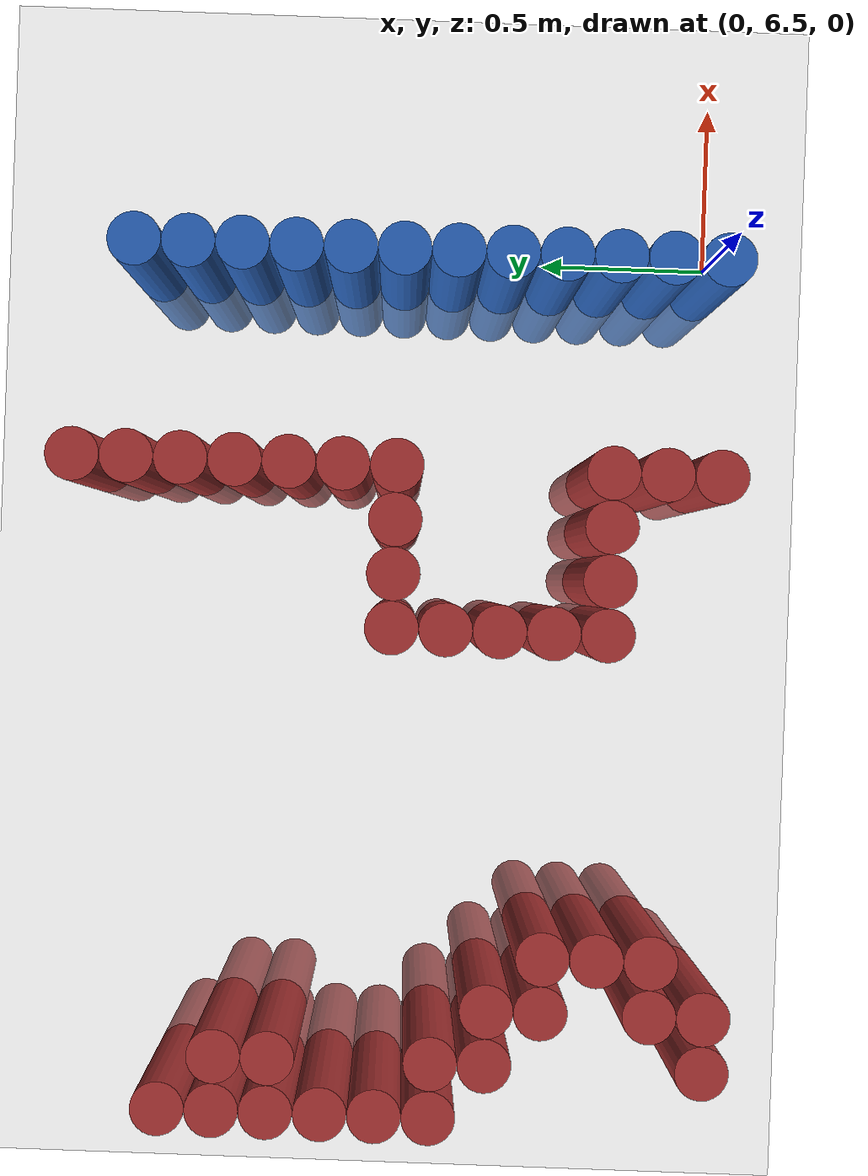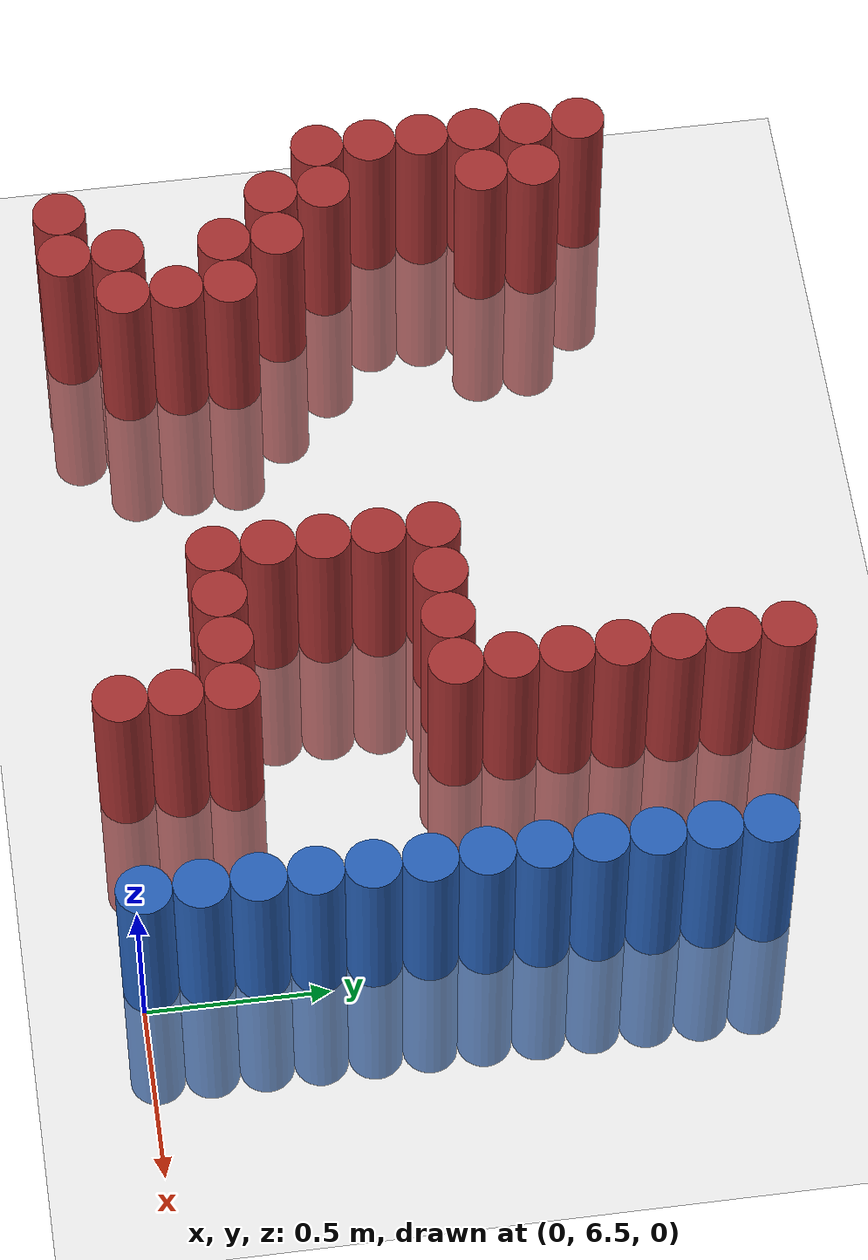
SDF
<sdf version="1.6">
 <world name="default">
  <model name="ground_plane">
   <static>1</static>
   <link name="link">
    <collision name="collision">
     <geometry><plane><normal>0 0 1</normal><size>100 100</size></plane></geometry>
     <surface><friction><ode><mu>100</mu><mu2>50</mu2></ode></friction></surface>
    </collision>
    <visual name="visual">
     <cast_shadows>0</cast_shadows>
     <geometry><plane><normal>0 0 1</normal><size>100 100</size></plane></geometry>
     <material>
      <script><uri>file://media/materials/scripts/gazebo.material</uri><name>Gazebo/Grey</name></script>
     </material>
    </visual>
   </link>
  </model>
  <model name="unit_cylinder_172">
   <static>1</static>
   <pose>-2.475000 7.275000 0.000000 0.000000 0.000000 0.000000</pose>
   <link name="link">
    <inertial>
     <mass>1</mass>
     <inertia><ixx>0.145833</ixx><ixy>0</ixy><ixz>0</ixz><iyy>0.145833</iyy><iyz>0</iyz><izz>0.125</izz></inertia>
    </inertial>
    <collision name="collision">
     <geometry><cylinder><radius>0.075000</radius><length>1</length></cylinder></geometry>
    </collision>
    <visual name="visual">
     <geometry><cylinder><radius>0.075000</radius><length>1</length></cylinder></geometry>
     <material>
      <ambient>0.648000 0.192000 0.192000 1</ambient>
      <diffuse>0.648000 0.192000 0.192000 1</diffuse>
     </material>
     <material>
      <script><name>Gazebo/Grey</name><uri>file://media/materials/scripts/gazebo.material</uri></script>
     </material>
    </visual>
   </link>
  </model>
  <model name="unit_cylinder_173">
   <static>1</static>
   <pose>-2.475000 7.425000 0.000000 0.000000 0.000000 0.000000</pose>
   <link name="link">
    <inertial>
     <mass>1</mass>
     <inertia><ixx>0.145833</ixx><ixy>0</ixy><ixz>0</ixz><iyy>0.145833</iyy><iyz>0</iyz><izz>0.125</izz></inertia>
    </inertial>
    <collision name="collision">
     <geometry><cylinder><radius>0.075000</radius><length>1</length></cylinder></geometry>
    </collision>
    <visual name="visual">
     <geometry><cylinder><radius>0.075000</radius><length>1</length></cylinder></geometry>
     <material>
      <ambient>0.648000 0.192000 0.192000 1</ambient>
      <diffuse>0.648000 0.192000 0.192000 1</diffuse>
     </material>
     <material>
      <script><name>Gazebo/Grey</name><uri>file://media/materials/scripts/gazebo.material</uri></script>
     </material>
    </visual>
   </link>
  </model>
  <model name="unit_cylinder_174">
   <static>1</static>
   <pose>-2.475000 7.575000 0.000000 0.000000 0.000000 0.000000</pose>
   <link name="link">
    <inertial>
     <mass>1</mass>
     <inertia><ixx>0.145833</ixx><ixy>0</ixy><ixz>0</ixz><iyy>0.145833</iyy><iyz>0</iyz><izz>0.125</izz></inertia>
    </inertial>
    <collision name="collision">
     <geometry><cylinder><radius>0.075000</radius><length>1</length></cylinder></geometry>
    </collision>
    <visual name="visual">
     <geometry><cylinder><radius>0.075000</radius><length>1</length></cylinder></geometry>
     <material>
      <ambient>0.648000 0.192000 0.192000 1</ambient>
      <diffuse>0.648000 0.192000 0.192000 1</diffuse>
     </material>
     <material>
      <script><name>Gazebo/Grey</name><uri>file://media/materials/scripts/gazebo.material</uri></script>
     </material>
    </visual>
   </link>
  </model>
  <model name="unit_cylinder_175">
   <static>1</static>
   <pose>-2.475000 7.725000 0.000000 0.000000 0.000000 0.000000</pose>
   <link name="link">
    <inertial>
     <mass>1</mass>
     <inertia><ixx>0.145833</ixx><ixy>0</ixy><ixz>0</ixz><iyy>0.145833</iyy><iyz>0</iyz><izz>0.125</izz></inertia>
    </inertial>
    <collision name="collision">
     <geometry><cylinder><radius>0.075000</radius><length>1</length></cylinder></geometry>
    </collision>
    <visual name="visual">
     <geometry><cylinder><radius>0.075000</radius><length>1</length></cylinder></geometry>
     <material>
      <ambient>0.648000 0.192000 0.192000 1</ambient>
      <diffuse>0.648000 0.192000 0.192000 1</diffuse>
     </material>
     <material>
      <script><name>Gazebo/Grey</name><uri>file://media/materials/scripts/gazebo.material</uri></script>
     </material>
    </visual>
   </link>
  </model>
  <model name="unit_cylinder_176">
   <static>1</static>
   <pose>-2.475000 7.875000 0.000000 0.000000 0.000000 0.000000</pose>
   <link name="link">
    <inertial>
     <mass>1</mass>
     <inertia><ixx>0.145833</ixx><ixy>0</ixy><ixz>0</ixz><iyy>0.145833</iyy><iyz>0</iyz><izz>0.125</izz></inertia>
    </inertial>
    <collision name="collision">
     <geometry><cylinder><radius>0.075000</radius><length>1</length></cylinder></geometry>
    </collision>
    <visual name="visual">
     <geometry><cylinder><radius>0.075000</radius><length>1</length></cylinder></geometry>
     <material>
      <ambient>0.648000 0.192000 0.192000 1</ambient>
      <diffuse>0.648000 0.192000 0.192000 1</diffuse>
     </material>
     <material>
      <script><name>Gazebo/Grey</name><uri>file://media/materials/scripts/gazebo.material</uri></script>
     </material>
    </visual>
   </link>
  </model>
  <model name="unit_cylinder_177">
   <static>1</static>
   <pose>-2.475000 8.025000 0.000000 0.000000 0.000000 0.000000</pose>
   <link name="link">
    <inertial>
     <mass>1</mass>
     <inertia><ixx>0.145833</ixx><ixy>0</ixy><ixz>0</ixz><iyy>0.145833</iyy><iyz>0</iyz><izz>0.125</izz></inertia>
    </inertial>
    <collision name="collision">
     <geometry><cylinder><radius>0.075000</radius><length>1</length></cylinder></geometry>
    </collision>
    <visual name="visual">
     <geometry><cylinder><radius>0.075000</radius><length>1</length></cylinder></geometry>
     <material>
      <ambient>0.648000 0.192000 0.192000 1</ambient>
      <diffuse>0.648000 0.192000 0.192000 1</diffuse>
     </material>
     <material>
      <script><name>Gazebo/Grey</name><uri>file://media/materials/scripts/gazebo.material</uri></script>
     </material>
    </visual>
   </link>
  </model>
  <model name="unit_cylinder_179">
   <static>1</static>
   <pose>-2.325000 6.525000 0.000000 0.000000 0.000000 0.000000</pose>
   <link name="link">
    <inertial>
     <mass>1</mass>
     <inertia><ixx>0.145833</ixx><ixy>0</ixy><ixz>0</ixz><iyy>0.145833</iyy><iyz>0</iyz><izz>0.125</izz></inertia>
    </inertial>
    <collision name="collision">
     <geometry><cylinder><radius>0.075000</radius><length>1</length></cylinder></geometry>
    </collision>
    <visual name="visual">
     <geometry><cylinder><radius>0.075000</radius><length>1</length></cylinder></geometry>
     <material>
      <ambient>0.648000 0.192000 0.192000 1</ambient>
      <diffuse>0.648000 0.192000 0.192000 1</diffuse>
     </material>
     <material>
      <script><name>Gazebo/Grey</name><uri>file://media/materials/scripts/gazebo.material</uri></script>
     </material>
    </visual>
   </link>
  </model>
  <model name="unit_cylinder_180">
   <static>1</static>
   <pose>-2.325000 7.125000 0.000000 0.000000 0.000000 0.000000</pose>
   <link name="link">
    <inertial>
     <mass>1</mass>
     <inertia><ixx>0.145833</ixx><ixy>0</ixy><ixz>0</ixz><iyy>0.145833</iyy><iyz>0</iyz><izz>0.125</izz></inertia>
    </inertial>
    <collision name="collision">
     <geometry><cylinder><radius>0.075000</radius><length>1</length></cylinder></geometry>
    </collision>
    <visual name="visual">
     <geometry><cylinder><radius>0.075000</radius><length>1</length></cylinder></geometry>
     <material>
      <ambient>0.648000 0.192000 0.192000 1</ambient>
      <diffuse>0.648000 0.192000 0.192000 1</diffuse>
     </material>
     <material>
      <script><name>Gazebo/Grey</name><uri>file://media/materials/scripts/gazebo.material</uri></script>
     </material>
    </visual>
   </link>
  </model>
  <model name="unit_cylinder_181">
   <static>1</static>
   <pose>-2.325000 7.275000 0.000000 0.000000 0.000000 0.000000</pose>
   <link name="link">
    <inertial>
     <mass>1</mass>
     <inertia><ixx>0.145833</ixx><ixy>0</ixy><ixz>0</ixz><iyy>0.145833</iyy><iyz>0</iyz><izz>0.125</izz></inertia>
    </inertial>
    <collision name="collision">
     <geometry><cylinder><radius>0.075000</radius><length>1</length></cylinder></geometry>
    </collision>
    <visual name="visual">
     <geometry><cylinder><radius>0.075000</radius><length>1</length></cylinder></geometry>
     <material>
      <ambient>0.648000 0.192000 0.192000 1</ambient>
      <diffuse>0.648000 0.192000 0.192000 1</diffuse>
     </material>
     <material>
      <script><name>Gazebo/Grey</name><uri>file://media/materials/scripts/gazebo.material</uri></script>
     </material>
    </visual>
   </link>
  </model>
  <model name="unit_cylinder_182">
   <static>1</static>
   <pose>-2.325000 7.725000 0.000000 0.000000 0.000000 0.000000</pose>
   <link name="link">
    <inertial>
     <mass>1</mass>
     <inertia><ixx>0.145833</ixx><ixy>0</ixy><ixz>0</ixz><iyy>0.145833</iyy><iyz>0</iyz><izz>0.125</izz></inertia>
    </inertial>
    <collision name="collision">
     <geometry><cylinder><radius>0.075000</radius><length>1</length></cylinder></geometry>
    </collision>
    <visual name="visual">
     <geometry><cylinder><radius>0.075000</radius><length>1</length></cylinder></geometry>
     <material>
      <ambient>0.648000 0.192000 0.192000 1</ambient>
      <diffuse>0.648000 0.192000 0.192000 1</diffuse>
     </material>
     <material>
      <script><name>Gazebo/Grey</name><uri>file://media/materials/scripts/gazebo.material</uri></script>
     </material>
    </visual>
   </link>
  </model>
  <model name="unit_cylinder_183">
   <static>1</static>
   <pose>-2.325000 7.875000 0.000000 0.000000 0.000000 0.000000</pose>
   <link name="link">
    <inertial>
     <mass>1</mass>
     <inertia><ixx>0.145833</ixx><ixy>0</ixy><ixz>0</ixz><iyy>0.145833</iyy><iyz>0</iyz><izz>0.125</izz></inertia>
    </inertial>
    <collision name="collision">
     <geometry><cylinder><radius>0.075000</radius><length>1</length></cylinder></geometry>
    </collision>
    <visual name="visual">
     <geometry><cylinder><radius>0.075000</radius><length>1</length></cylinder></geometry>
     <material>
      <ambient>0.648000 0.192000 0.192000 1</ambient>
      <diffuse>0.648000 0.192000 0.192000 1</diffuse>
     </material>
     <material>
      <script><name>Gazebo/Grey</name><uri>file://media/materials/scripts/gazebo.material</uri></script>
     </material>
    </visual>
   </link>
  </model>
  <model name="unit_cylinder_185">
   <static>1</static>
   <pose>-2.175000 6.525000 0.000000 0.000000 0.000000 0.000000</pose>
   <link name="link">
    <inertial>
     <mass>1</mass>
     <inertia><ixx>0.145833</ixx><ixy>0</ixy><ixz>0</ixz><iyy>0.145833</iyy><iyz>0</iyz><izz>0.125</izz></inertia>
    </inertial>
    <collision name="collision">
     <geometry><cylinder><radius>0.075000</radius><length>1</length></cylinder></geometry>
    </collision>
    <visual name="visual">
     <geometry><cylinder><radius>0.075000</radius><length>1</length></cylinder></geometry>
     <material>
      <ambient>0.648000 0.192000 0.192000 1</ambient>
      <diffuse>0.648000 0.192000 0.192000 1</diffuse>
     </material>
     <material>
      <script><name>Gazebo/Grey</name><uri>file://media/materials/scripts/gazebo.material</uri></script>
     </material>
    </visual>
   </link>
  </model>
  <model name="unit_cylinder_186">
   <static>1</static>
   <pose>-2.175000 6.675000 0.000000 0.000000 0.000000 0.000000</pose>
   <link name="link">
    <inertial>
     <mass>1</mass>
     <inertia><ixx>0.145833</ixx><ixy>0</ixy><ixz>0</ixz><iyy>0.145833</iyy><iyz>0</iyz><izz>0.125</izz></inertia>
    </inertial>
    <collision name="collision">
     <geometry><cylinder><radius>0.075000</radius><length>1</length></cylinder></geometry>
    </collision>
    <visual name="visual">
     <geometry><cylinder><radius>0.075000</radius><length>1</length></cylinder></geometry>
     <material>
      <ambient>0.648000 0.192000 0.192000 1</ambient>
      <diffuse>0.648000 0.192000 0.192000 1</diffuse>
     </material>
     <material>
      <script><name>Gazebo/Grey</name><uri>file://media/materials/scripts/gazebo.material</uri></script>
     </material>
    </visual>
   </link>
  </model>
  <model name="unit_cylinder_187">
   <static>1</static>
   <pose>-2.175000 6.975000 0.000000 0.000000 0.000000 0.000000</pose>
   <link name="link">
    <inertial>
     <mass>1</mass>
     <inertia><ixx>0.145833</ixx><ixy>0</ixy><ixz>0</ixz><iyy>0.145833</iyy><iyz>0</iyz><izz>0.125</izz></inertia>
    </inertial>
    <collision name="collision">
     <geometry><cylinder><radius>0.075000</radius><length>1</length></cylinder></geometry>
    </collision>
    <visual name="visual">
     <geometry><cylinder><radius>0.075000</radius><length>1</length></cylinder></geometry>
     <material>
      <ambient>0.648000 0.192000 0.192000 1</ambient>
      <diffuse>0.648000 0.192000 0.192000 1</diffuse>
     </material>
     <material>
      <script><name>Gazebo/Grey</name><uri>file://media/materials/scripts/gazebo.material</uri></script>
     </material>
    </visual>
   </link>
  </model>
  <model name="unit_cylinder_188">
   <static>1</static>
   <pose>-2.175000 7.125000 0.000000 0.000000 0.000000 0.000000</pose>
   <link name="link">
    <inertial>
     <mass>1</mass>
     <inertia><ixx>0.145833</ixx><ixy>0</ixy><ixz>0</ixz><iyy>0.145833</iyy><iyz>0</iyz><izz>0.125</izz></inertia>
    </inertial>
    <collision name="collision">
     <geometry><cylinder><radius>0.075000</radius><length>1</length></cylinder></geometry>
    </collision>
    <visual name="visual">
     <geometry><cylinder><radius>0.075000</radius><length>1</length></cylinder></geometry>
     <material>
      <ambient>0.648000 0.192000 0.192000 1</ambient>
      <diffuse>0.648000 0.192000 0.192000 1</diffuse>
     </material>
     <material>
      <script><name>Gazebo/Grey</name><uri>file://media/materials/scripts/gazebo.material</uri></script>
     </material>
    </visual>
   </link>
  </model>
  <model name="unit_cylinder_190">
   <static>1</static>
   <pose>-2.025000 6.675000 0.000000 0.000000 0.000000 0.000000</pose>
   <link name="link">
    <inertial>
     <mass>1</mass>
     <inertia><ixx>0.145833</ixx><ixy>0</ixy><ixz>0</ixz><iyy>0.145833</iyy><iyz>0</iyz><izz>0.125</izz></inertia>
    </inertial>
    <collision name="collision">
     <geometry><cylinder><radius>0.075000</radius><length>1</length></cylinder></geometry>
    </collision>
    <visual name="visual">
     <geometry><cylinder><radius>0.075000</radius><length>1</length></cylinder></geometry>
     <material>
      <ambient>0.648000 0.192000 0.192000 1</ambient>
      <diffuse>0.648000 0.192000 0.192000 1</diffuse>
     </material>
     <material>
      <script><name>Gazebo/Grey</name><uri>file://media/materials/scripts/gazebo.material</uri></script>
     </material>
    </visual>
   </link>
  </model>
  <model name="unit_cylinder_191">
   <static>1</static>
   <pose>-2.025000 6.825000 0.000000 0.000000 0.000000 0.000000</pose>
   <link name="link">
    <inertial>
     <mass>1</mass>
     <inertia><ixx>0.145833</ixx><ixy>0</ixy><ixz>0</ixz><iyy>0.145833</iyy><iyz>0</iyz><izz>0.125</izz></inertia>
    </inertial>
    <collision name="collision">
     <geometry><cylinder><radius>0.075000</radius><length>1</length></cylinder></geometry>
    </collision>
    <visual name="visual">
     <geometry><cylinder><radius>0.075000</radius><length>1</length></cylinder></geometry>
     <material>
      <ambient>0.648000 0.192000 0.192000 1</ambient>
      <diffuse>0.648000 0.192000 0.192000 1</diffuse>
     </material>
     <material>
      <script><name>Gazebo/Grey</name><uri>file://media/materials/scripts/gazebo.material</uri></script>
     </material>
    </visual>
   </link>
  </model>
  <model name="unit_cylinder_192">
   <static>1</static>
   <pose>-2.025000 6.975000 0.000000 0.000000 0.000000 0.000000</pose>
   <link name="link">
    <inertial>
     <mass>1</mass>
     <inertia><ixx>0.145833</ixx><ixy>0</ixy><ixz>0</ixz><iyy>0.145833</iyy><iyz>0</iyz><izz>0.125</izz></inertia>
    </inertial>
    <collision name="collision">
     <geometry><cylinder><radius>0.075000</radius><length>1</length></cylinder></geometry>
    </collision>
    <visual name="visual">
     <geometry><cylinder><radius>0.075000</radius><length>1</length></cylinder></geometry>
     <material>
      <ambient>0.648000 0.192000 0.192000 1</ambient>
      <diffuse>0.648000 0.192000 0.192000 1</diffuse>
     </material>
     <material>
      <script><name>Gazebo/Grey</name><uri>file://media/materials/scripts/gazebo.material</uri></script>
     </material>
    </visual>
   </link>
  </model>
  <model name="unit_cylinder_208">
   <static>1</static>
   <pose>-1.125000 6.825000 0.000000 0.000000 0.000000 0.000000</pose>
   <link name="link">
    <inertial>
     <mass>1</mass>
     <inertia><ixx>0.145833</ixx><ixy>0</ixy><ixz>0</ixz><iyy>0.145833</iyy><iyz>0</iyz><izz>0.125</izz></inertia>
    </inertial>
    <collision name="collision">
     <geometry><cylinder><radius>0.075000</radius><length>1</length></cylinder></geometry>
    </collision>
    <visual name="visual">
     <geometry><cylinder><radius>0.075000</radius><length>1</length></cylinder></geometry>
     <material>
      <ambient>0.648000 0.192000 0.192000 1</ambient>
      <diffuse>0.648000 0.192000 0.192000 1</diffuse>
     </material>
     <material>
      <script><name>Gazebo/Grey</name><uri>file://media/materials/scripts/gazebo.material</uri></script>
     </material>
    </visual>
   </link>
  </model>
  <model name="unit_cylinder_209">
   <static>1</static>
   <pose>-1.125000 6.975000 0.000000 0.000000 0.000000 0.000000</pose>
   <link name="link">
    <inertial>
     <mass>1</mass>
     <inertia><ixx>0.145833</ixx><ixy>0</ixy><ixz>0</ixz><iyy>0.145833</iyy><iyz>0</iyz><izz>0.125</izz></inertia>
    </inertial>
    <collision name="collision">
     <geometry><cylinder><radius>0.075000</radius><length>1</length></cylinder></geometry>
    </collision>
    <visual name="visual">
     <geometry><cylinder><radius>0.075000</radius><length>1</length></cylinder></geometry>
     <material>
      <ambient>0.648000 0.192000 0.192000 1</ambient>
      <diffuse>0.648000 0.192000 0.192000 1</diffuse>
     </material>
     <material>
      <script><name>Gazebo/Grey</name><uri>file://media/materials/scripts/gazebo.material</uri></script>
     </material>
    </visual>
   </link>
  </model>
  <model name="unit_cylinder_210">
   <static>1</static>
   <pose>-1.125000 7.125000 0.000000 0.000000 0.000000 0.000000</pose>
   <link name="link">
    <inertial>
     <mass>1</mass>
     <inertia><ixx>0.145833</ixx><ixy>0</ixy><ixz>0</ixz><iyy>0.145833</iyy><iyz>0</iyz><izz>0.125</izz></inertia>
    </inertial>
    <collision name="collision">
     <geometry><cylinder><radius>0.075000</radius><length>1</length></cylinder></geometry>
    </collision>
    <visual name="visual">
     <geometry><cylinder><radius>0.075000</radius><length>1</length></cylinder></geometry>
     <material>
      <ambient>0.648000 0.192000 0.192000 1</ambient>
      <diffuse>0.648000 0.192000 0.192000 1</diffuse>
     </material>
     <material>
      <script><name>Gazebo/Grey</name><uri>file://media/materials/scripts/gazebo.material</uri></script>
     </material>
    </visual>
   </link>
  </model>
  <model name="unit_cylinder_211">
   <static>1</static>
   <pose>-1.125000 7.275000 0.000000 0.000000 0.000000 0.000000</pose>
   <link name="link">
    <inertial>
     <mass>1</mass>
     <inertia><ixx>0.145833</ixx><ixy>0</ixy><ixz>0</ixz><iyy>0.145833</iyy><iyz>0</iyz><izz>0.125</izz></inertia>
    </inertial>
    <collision name="collision">
     <geometry><cylinder><radius>0.075000</radius><length>1</length></cylinder></geometry>
    </collision>
    <visual name="visual">
     <geometry><cylinder><radius>0.075000</radius><length>1</length></cylinder></geometry>
     <material>
      <ambient>0.648000 0.192000 0.192000 1</ambient>
      <diffuse>0.648000 0.192000 0.192000 1</diffuse>
     </material>
     <material>
      <script><name>Gazebo/Grey</name><uri>file://media/materials/scripts/gazebo.material</uri></script>
     </material>
    </visual>
   </link>
  </model>
  <model name="unit_cylinder_212">
   <static>1</static>
   <pose>-1.125000 7.425000 0.000000 0.000000 0.000000 0.000000</pose>
   <link name="link">
    <inertial>
     <mass>1</mass>
     <inertia><ixx>0.145833</ixx><ixy>0</ixy><ixz>0</ixz><iyy>0.145833</iyy><iyz>0</iyz><izz>0.125</izz></inertia>
    </inertial>
    <collision name="collision">
     <geometry><cylinder><radius>0.075000</radius><length>1</length></cylinder></geometry>
    </collision>
    <visual name="visual">
     <geometry><cylinder><radius>0.075000</radius><length>1</length></cylinder></geometry>
     <material>
      <ambient>0.648000 0.192000 0.192000 1</ambient>
      <diffuse>0.648000 0.192000 0.192000 1</diffuse>
     </material>
     <material>
      <script><name>Gazebo/Grey</name><uri>file://media/materials/scripts/gazebo.material</uri></script>
     </material>
    </visual>
   </link>
  </model>
  <model name="unit_cylinder_215">
   <static>1</static>
   <pose>-0.975000 6.825000 0.000000 0.000000 0.000000 0.000000</pose>
   <link name="link">
    <inertial>
     <mass>1</mass>
     <inertia><ixx>0.145833</ixx><ixy>0</ixy><ixz>0</ixz><iyy>0.145833</iyy><iyz>0</iyz><izz>0.125</izz></inertia>
    </inertial>
    <collision name="collision">
     <geometry><cylinder><radius>0.075000</radius><length>1</length></cylinder></geometry>
    </collision>
    <visual name="visual">
     <geometry><cylinder><radius>0.075000</radius><length>1</length></cylinder></geometry>
     <material>
      <ambient>0.648000 0.192000 0.192000 1</ambient>
      <diffuse>0.648000 0.192000 0.192000 1</diffuse>
     </material>
     <material>
      <script><name>Gazebo/Grey</name><uri>file://media/materials/scripts/gazebo.material</uri></script>
     </material>
    </visual>
   </link>
  </model>
  <model name="unit_cylinder_216">
   <static>1</static>
   <pose>-0.975000 7.425000 0.000000 0.000000 0.000000 0.000000</pose>
   <link name="link">
    <inertial>
     <mass>1</mass>
     <inertia><ixx>0.145833</ixx><ixy>0</ixy><ixz>0</ixz><iyy>0.145833</iyy><iyz>0</iyz><izz>0.125</izz></inertia>
    </inertial>
    <collision name="collision">
     <geometry><cylinder><radius>0.075000</radius><length>1</length></cylinder></geometry>
    </collision>
    <visual name="visual">
     <geometry><cylinder><radius>0.075000</radius><length>1</length></cylinder></geometry>
     <material>
      <ambient>0.648000 0.192000 0.192000 1</ambient>
      <diffuse>0.648000 0.192000 0.192000 1</diffuse>
     </material>
     <material>
      <script><name>Gazebo/Grey</name><uri>file://media/materials/scripts/gazebo.material</uri></script>
     </material>
    </visual>
   </link>
  </model>
  <model name="unit_cylinder_222">
   <static>1</static>
   <pose>-0.825000 6.825000 0.000000 0.000000 0.000000 0.000000</pose>
   <link name="link">
    <inertial>
     <mass>1</mass>
     <inertia><ixx>0.145833</ixx><ixy>0</ixy><ixz>0</ixz><iyy>0.145833</iyy><iyz>0</iyz><izz>0.125</izz></inertia>
    </inertial>
    <collision name="collision">
     <geometry><cylinder><radius>0.075000</radius><length>1</length></cylinder></geometry>
    </collision>
    <visual name="visual">
     <geometry><cylinder><radius>0.075000</radius><length>1</length></cylinder></geometry>
     <material>
      <ambient>0.648000 0.192000 0.192000 1</ambient>
      <diffuse>0.648000 0.192000 0.192000 1</diffuse>
     </material>
     <material>
      <script><name>Gazebo/Grey</name><uri>file://media/materials/scripts/gazebo.material</uri></script>
     </material>
    </visual>
   </link>
  </model>
  <model name="unit_cylinder_223">
   <static>1</static>
   <pose>-0.825000 7.425000 0.000000 0.000000 0.000000 0.000000</pose>
   <link name="link">
    <inertial>
     <mass>1</mass>
     <inertia><ixx>0.145833</ixx><ixy>0</ixy><ixz>0</ixz><iyy>0.145833</iyy><iyz>0</iyz><izz>0.125</izz></inertia>
    </inertial>
    <collision name="collision">
     <geometry><cylinder><radius>0.075000</radius><length>1</length></cylinder></geometry>
    </collision>
    <visual name="visual">
     <geometry><cylinder><radius>0.075000</radius><length>1</length></cylinder></geometry>
     <material>
      <ambient>0.648000 0.192000 0.192000 1</ambient>
      <diffuse>0.648000 0.192000 0.192000 1</diffuse>
     </material>
     <material>
      <script><name>Gazebo/Grey</name><uri>file://media/materials/scripts/gazebo.material</uri></script>
     </material>
    </visual>
   </link>
  </model>
  <model name="unit_cylinder_235">
   <static>1</static>
   <pose>-0.675000 6.525000 0.000000 0.000000 0.000000 0.000000</pose>
   <link name="link">
    <inertial>
     <mass>1</mass>
     <inertia><ixx>0.145833</ixx><ixy>0</ixy><ixz>0</ixz><iyy>0.145833</iyy><iyz>0</iyz><izz>0.125</izz></inertia>
    </inertial>
    <collision name="collision">
     <geometry><cylinder><radius>0.075000</radius><length>1</length></cylinder></geometry>
    </collision>
    <visual name="visual">
     <geometry><cylinder><radius>0.075000</radius><length>1</length></cylinder></geometry>
     <material>
      <ambient>0.648000 0.192000 0.192000 1</ambient>
      <diffuse>0.648000 0.192000 0.192000 1</diffuse>
     </material>
     <material>
      <script><name>Gazebo/Grey</name><uri>file://media/materials/scripts/gazebo.material</uri></script>
     </material>
    </visual>
   </link>
  </model>
  <model name="unit_cylinder_236">
   <static>1</static>
   <pose>-0.675000 6.675000 0.000000 0.000000 0.000000 0.000000</pose>
   <link name="link">
    <inertial>
     <mass>1</mass>
     <inertia><ixx>0.145833</ixx><ixy>0</ixy><ixz>0</ixz><iyy>0.145833</iyy><iyz>0</iyz><izz>0.125</izz></inertia>
    </inertial>
    <collision name="collision">
     <geometry><cylinder><radius>0.075000</radius><length>1</length></cylinder></geometry>
    </collision>
    <visual name="visual">
     <geometry><cylinder><radius>0.075000</radius><length>1</length></cylinder></geometry>
     <material>
      <ambient>0.648000 0.192000 0.192000 1</ambient>
      <diffuse>0.648000 0.192000 0.192000 1</diffuse>
     </material>
     <material>
      <script><name>Gazebo/Grey</name><uri>file://media/materials/scripts/gazebo.material</uri></script>
     </material>
    </visual>
   </link>
  </model>
  <model name="unit_cylinder_237">
   <static>1</static>
   <pose>-0.675000 6.825000 0.000000 0.000000 0.000000 0.000000</pose>
   <link name="link">
    <inertial>
     <mass>1</mass>
     <inertia><ixx>0.145833</ixx><ixy>0</ixy><ixz>0</ixz><iyy>0.145833</iyy><iyz>0</iyz><izz>0.125</izz></inertia>
    </inertial>
    <collision name="collision">
     <geometry><cylinder><radius>0.075000</radius><length>1</length></cylinder></geometry>
    </collision>
    <visual name="visual">
     <geometry><cylinder><radius>0.075000</radius><length>1</length></cylinder></geometry>
     <material>
      <ambient>0.648000 0.192000 0.192000 1</ambient>
      <diffuse>0.648000 0.192000 0.192000 1</diffuse>
     </material>
     <material>
      <script><name>Gazebo/Grey</name><uri>file://media/materials/scripts/gazebo.material</uri></script>
     </material>
    </visual>
   </link>
  </model>
  <model name="unit_cylinder_238">
   <static>1</static>
   <pose>-0.675000 7.425000 0.000000 0.000000 0.000000 0.000000</pose>
   <link name="link">
    <inertial>
     <mass>1</mass>
     <inertia><ixx>0.145833</ixx><ixy>0</ixy><ixz>0</ixz><iyy>0.145833</iyy><iyz>0</iyz><izz>0.125</izz></inertia>
    </inertial>
    <collision name="collision">
     <geometry><cylinder><radius>0.075000</radius><length>1</length></cylinder></geometry>
    </collision>
    <visual name="visual">
     <geometry><cylinder><radius>0.075000</radius><length>1</length></cylinder></geometry>
     <material>
      <ambient>0.648000 0.192000 0.192000 1</ambient>
      <diffuse>0.648000 0.192000 0.192000 1</diffuse>
     </material>
     <material>
      <script><name>Gazebo/Grey</name><uri>file://media/materials/scripts/gazebo.material</uri></script>
     </material>
    </visual>
   </link>
  </model>
  <model name="unit_cylinder_239">
   <static>1</static>
   <pose>-0.675000 7.575000 0.000000 0.000000 0.000000 0.000000</pose>
   <link name="link">
    <inertial>
     <mass>1</mass>
     <inertia><ixx>0.145833</ixx><ixy>0</ixy><ixz>0</ixz><iyy>0.145833</iyy><iyz>0</iyz><izz>0.125</izz></inertia>
    </inertial>
    <collision name="collision">
     <geometry><cylinder><radius>0.075000</radius><length>1</length></cylinder></geometry>
    </collision>
    <visual name="visual">
     <geometry><cylinder><radius>0.075000</radius><length>1</length></cylinder></geometry>
     <material>
      <ambient>0.648000 0.192000 0.192000 1</ambient>
      <diffuse>0.648000 0.192000 0.192000 1</diffuse>
     </material>
     <material>
      <script><name>Gazebo/Grey</name><uri>file://media/materials/scripts/gazebo.material</uri></script>
     </material>
    </visual>
   </link>
  </model>
  <model name="unit_cylinder_240">
   <static>1</static>
   <pose>-0.675000 7.725000 0.000000 0.000000 0.000000 0.000000</pose>
   <link name="link">
    <inertial>
     <mass>1</mass>
     <inertia><ixx>0.145833</ixx><ixy>0</ixy><ixz>0</ixz><iyy>0.145833</iyy><iyz>0</iyz><izz>0.125</izz></inertia>
    </inertial>
    <collision name="collision">
     <geometry><cylinder><radius>0.075000</radius><length>1</length></cylinder></geometry>
    </collision>
    <visual name="visual">
     <geometry><cylinder><radius>0.075000</radius><length>1</length></cylinder></geometry>
     <material>
      <ambient>0.648000 0.192000 0.192000 1</ambient>
      <diffuse>0.648000 0.192000 0.192000 1</diffuse>
     </material>
     <material>
      <script><name>Gazebo/Grey</name><uri>file://media/materials/scripts/gazebo.material</uri></script>
     </material>
    </visual>
   </link>
  </model>
  <model name="unit_cylinder_241">
   <static>1</static>
   <pose>-0.675000 7.875000 0.000000 0.000000 0.000000 0.000000</pose>
   <link name="link">
    <inertial>
     <mass>1</mass>
     <inertia><ixx>0.145833</ixx><ixy>0</ixy><ixz>0</ixz><iyy>0.145833</iyy><iyz>0</iyz><izz>0.125</izz></inertia>
    </inertial>
    <collision name="collision">
     <geometry><cylinder><radius>0.075000</radius><length>1</length></cylinder></geometry>
    </collision>
    <visual name="visual">
     <geometry><cylinder><radius>0.075000</radius><length>1</length></cylinder></geometry>
     <material>
      <ambient>0.648000 0.192000 0.192000 1</ambient>
      <diffuse>0.648000 0.192000 0.192000 1</diffuse>
     </material>
     <material>
      <script><name>Gazebo/Grey</name><uri>file://media/materials/scripts/gazebo.material</uri></script>
     </material>
    </visual>
   </link>
  </model>
  <model name="unit_cylinder_242">
   <static>1</static>
   <pose>-0.675000 8.025000 0.000000 0.000000 0.000000 0.000000</pose>
   <link name="link">
    <inertial>
     <mass>1</mass>
     <inertia><ixx>0.145833</ixx><ixy>0</ixy><ixz>0</ixz><iyy>0.145833</iyy><iyz>0</iyz><izz>0.125</izz></inertia>
    </inertial>
    <collision name="collision">
     <geometry><cylinder><radius>0.075000</radius><length>1</length></cylinder></geometry>
    </collision>
    <visual name="visual">
     <geometry><cylinder><radius>0.075000</radius><length>1</length></cylinder></geometry>
     <material>
      <ambient>0.648000 0.192000 0.192000 1</ambient>
      <diffuse>0.648000 0.192000 0.192000 1</diffuse>
     </material>
     <material>
      <script><name>Gazebo/Grey</name><uri>file://media/materials/scripts/gazebo.material</uri></script>
     </material>
    </visual>
   </link>
  </model>
  <model name="unit_cylinder_243">
   <static>1</static>
   <pose>-0.675000 8.175000 0.000000 0.000000 0.000000 0.000000</pose>
   <link name="link">
    <inertial>
     <mass>1</mass>
     <inertia><ixx>0.145833</ixx><ixy>0</ixy><ixz>0</ixz><iyy>0.145833</iyy><iyz>0</iyz><izz>0.125</izz></inertia>
    </inertial>
    <collision name="collision">
     <geometry><cylinder><radius>0.075000</radius><length>1</length></cylinder></geometry>
    </collision>
    <visual name="visual">
     <geometry><cylinder><radius>0.075000</radius><length>1</length></cylinder></geometry>
     <material>
      <ambient>0.648000 0.192000 0.192000 1</ambient>
      <diffuse>0.648000 0.192000 0.192000 1</diffuse>
     </material>
     <material>
      <script><name>Gazebo/Grey</name><uri>file://media/materials/scripts/gazebo.material</uri></script>
     </material>
    </visual>
   </link>
  </model>
  <model name="unit_cylinder_244">
   <static>1</static>
   <pose>-0.675000 8.325000 0.000000 0.000000 0.000000 0.000000</pose>
   <link name="link">
    <inertial>
     <mass>1</mass>
     <inertia><ixx>0.145833</ixx><ixy>0</ixy><ixz>0</ixz><iyy>0.145833</iyy><iyz>0</iyz><izz>0.125</izz></inertia>
    </inertial>
    <collision name="collision">
     <geometry><cylinder><radius>0.075000</radius><length>1</length></cylinder></geometry>
    </collision>
    <visual name="visual">
     <geometry><cylinder><radius>0.075000</radius><length>1</length></cylinder></geometry>
     <material>
      <ambient>0.648000 0.192000 0.192000 1</ambient>
      <diffuse>0.648000 0.192000 0.192000 1</diffuse>
     </material>
     <material>
      <script><name>Gazebo/Grey</name><uri>file://media/materials/scripts/gazebo.material</uri></script>
     </material>
    </visual>
   </link>
  </model>
  <model name="unit_cylinder_275">
   <static>1</static>
   <pose>-0.075000 6.525000 0.000000 0.000000 0.000000 0.000000</pose>
   <link name="link">
    <inertial>
     <mass>1</mass>
     <inertia><ixx>0.145833</ixx><ixy>0</ixy><ixz>0</ixz><iyy>0.145833</iyy><iyz>0</iyz><izz>0.125</izz></inertia>
    </inertial>
    <collision name="collision">
     <geometry><cylinder><radius>0.075000</radius><length>1</length></cylinder></geometry>
    </collision>
    <visual name="visual">
     <geometry><cylinder><radius>0.075000</radius><length>1</length></cylinder></geometry>
     <material>
      <ambient>0.152000 0.379000 0.720000 1</ambient>
      <diffuse>0.152000 0.379000 0.720000 1</diffuse>
     </material>
     <material>
      <script><name>Gazebo/Grey</name><uri>file://media/materials/scripts/gazebo.material</uri></script>
     </material>
    </visual>
   </link>
  </model>
  <model name="unit_cylinder_276">
   <static>1</static>
   <pose>-0.075000 6.675000 0.000000 0.000000 0.000000 0.000000</pose>
   <link name="link">
    <inertial>
     <mass>1</mass>
     <inertia><ixx>0.145833</ixx><ixy>0</ixy><ixz>0</ixz><iyy>0.145833</iyy><iyz>0</iyz><izz>0.125</izz></inertia>
    </inertial>
    <collision name="collision">
     <geometry><cylinder><radius>0.075000</radius><length>1</length></cylinder></geometry>
    </collision>
    <visual name="visual">
     <geometry><cylinder><radius>0.075000</radius><length>1</length></cylinder></geometry>
     <material>
      <ambient>0.152000 0.379000 0.720000 1</ambient>
      <diffuse>0.152000 0.379000 0.720000 1</diffuse>
     </material>
     <material>
      <script><name>Gazebo/Grey</name><uri>file://media/materials/scripts/gazebo.material</uri></script>
     </material>
    </visual>
   </link>
  </model>
  <model name="unit_cylinder_277">
   <static>1</static>
   <pose>-0.075000 6.825000 0.000000 0.000000 0.000000 0.000000</pose>
   <link name="link">
    <inertial>
     <mass>1</mass>
     <inertia><ixx>0.145833</ixx><ixy>0</ixy><ixz>0</ixz><iyy>0.145833</iyy><iyz>0</iyz><izz>0.125</izz></inertia>
    </inertial>
    <collision name="collision">
     <geometry><cylinder><radius>0.075000</radius><length>1</length></cylinder></geometry>
    </collision>
    <visual name="visual">
     <geometry><cylinder><radius>0.075000</radius><length>1</length></cylinder></geometry>
     <material>
      <ambient>0.152000 0.379000 0.720000 1</ambient>
      <diffuse>0.152000 0.379000 0.720000 1</diffuse>
     </material>
     <material>
      <script><name>Gazebo/Grey</name><uri>file://media/materials/scripts/gazebo.material</uri></script>
     </material>
    </visual>
   </link>
  </model>
  <model name="unit_cylinder_278">
   <static>1</static>
   <pose>-0.075000 6.975000 0.000000 0.000000 0.000000 0.000000</pose>
   <link name="link">
    <inertial>
     <mass>1</mass>
     <inertia><ixx>0.145833</ixx><ixy>0</ixy><ixz>0</ixz><iyy>0.145833</iyy><iyz>0</iyz><izz>0.125</izz></inertia>
    </inertial>
    <collision name="collision">
     <geometry><cylinder><radius>0.075000</radius><length>1</length></cylinder></geometry>
    </collision>
    <visual name="visual">
     <geometry><cylinder><radius>0.075000</radius><length>1</length></cylinder></geometry>
     <material>
      <ambient>0.152000 0.379000 0.720000 1</ambient>
      <diffuse>0.152000 0.379000 0.720000 1</diffuse>
     </material>
     <material>
      <script><name>Gazebo/Grey</name><uri>file://media/materials/scripts/gazebo.material</uri></script>
     </material>
    </visual>
   </link>
  </model>
  <model name="unit_cylinder_279">
   <static>1</static>
   <pose>-0.075000 7.125000 0.000000 0.000000 0.000000 0.000000</pose>
   <link name="link">
    <inertial>
     <mass>1</mass>
     <inertia><ixx>0.145833</ixx><ixy>0</ixy><ixz>0</ixz><iyy>0.145833</iyy><iyz>0</iyz><izz>0.125</izz></inertia>
    </inertial>
    <collision name="collision">
     <geometry><cylinder><radius>0.075000</radius><length>1</length></cylinder></geometry>
    </collision>
    <visual name="visual">
     <geometry><cylinder><radius>0.075000</radius><length>1</length></cylinder></geometry>
     <material>
      <ambient>0.152000 0.379000 0.720000 1</ambient>
      <diffuse>0.152000 0.379000 0.720000 1</diffuse>
     </material>
     <material>
      <script><name>Gazebo/Grey</name><uri>file://media/materials/scripts/gazebo.material</uri></script>
     </material>
    </visual>
   </link>
  </model>
  <model name="unit_cylinder_280">
   <static>1</static>
   <pose>-0.075000 7.275000 0.000000 0.000000 0.000000 0.000000</pose>
   <link name="link">
    <inertial>
     <mass>1</mass>
     <inertia><ixx>0.145833</ixx><ixy>0</ixy><ixz>0</ixz><iyy>0.145833</iyy><iyz>0</iyz><izz>0.125</izz></inertia>
    </inertial>
    <collision name="collision">
     <geometry><cylinder><radius>0.075000</radius><length>1</length></cylinder></geometry>
    </collision>
    <visual name="visual">
     <geometry><cylinder><radius>0.075000</radius><length>1</length></cylinder></geometry>
     <material>
      <ambient>0.152000 0.379000 0.720000 1</ambient>
      <diffuse>0.152000 0.379000 0.720000 1</diffuse>
     </material>
     <material>
      <script><name>Gazebo/Grey</name><uri>file://media/materials/scripts/gazebo.material</uri></script>
     </material>
    </visual>
   </link>
  </model>
  <model name="unit_cylinder_281">
   <static>1</static>
   <pose>-0.075000 7.425000 0.000000 0.000000 0.000000 0.000000</pose>
   <link name="link">
    <inertial>
     <mass>1</mass>
     <inertia><ixx>0.145833</ixx><ixy>0</ixy><ixz>0</ixz><iyy>0.145833</iyy><iyz>0</iyz><izz>0.125</izz></inertia>
    </inertial>
    <collision name="collision">
     <geometry><cylinder><radius>0.075000</radius><length>1</length></cylinder></geometry>
    </collision>
    <visual name="visual">
     <geometry><cylinder><radius>0.075000</radius><length>1</length></cylinder></geometry>
     <material>
      <ambient>0.152000 0.379000 0.720000 1</ambient>
      <diffuse>0.152000 0.379000 0.720000 1</diffuse>
     </material>
     <material>
      <script><name>Gazebo/Grey</name><uri>file://media/materials/scripts/gazebo.material</uri></script>
     </material>
    </visual>
   </link>
  </model>
  <model name="unit_cylinder_282">
   <static>1</static>
   <pose>-0.075000 7.575000 0.000000 0.000000 0.000000 0.000000</pose>
   <link name="link">
    <inertial>
     <mass>1</mass>
     <inertia><ixx>0.145833</ixx><ixy>0</ixy><ixz>0</ixz><iyy>0.145833</iyy><iyz>0</iyz><izz>0.125</izz></inertia>
    </inertial>
    <collision name="collision">
     <geometry><cylinder><radius>0.075000</radius><length>1</length></cylinder></geometry>
    </collision>
    <visual name="visual">
     <geometry><cylinder><radius>0.075000</radius><length>1</length></cylinder></geometry>
     <material>
      <ambient>0.152000 0.379000 0.720000 1</ambient>
      <diffuse>0.152000 0.379000 0.720000 1</diffuse>
     </material>
     <material>
      <script><name>Gazebo/Grey</name><uri>file://media/materials/scripts/gazebo.material</uri></script>
     </material>
    </visual>
   </link>
  </model>
  <model name="unit_cylinder_283">
   <static>1</static>
   <pose>-0.075000 7.725000 0.000000 0.000000 0.000000 0.000000</pose>
   <link name="link">
    <inertial>
     <mass>1</mass>
     <inertia><ixx>0.145833</ixx><ixy>0</ixy><ixz>0</ixz><iyy>0.145833</iyy><iyz>0</iyz><izz>0.125</izz></inertia>
    </inertial>
    <collision name="collision">
     <geometry><cylinder><radius>0.075000</radius><length>1</length></cylinder></geometry>
    </collision>
    <visual name="visual">
     <geometry><cylinder><radius>0.075000</radius><length>1</length></cylinder></geometry>
     <material>
      <ambient>0.152000 0.379000 0.720000 1</ambient>
      <diffuse>0.152000 0.379000 0.720000 1</diffuse>
     </material>
     <material>
      <script><name>Gazebo/Grey</name><uri>file://media/materials/scripts/gazebo.material</uri></script>
     </material>
    </visual>
   </link>
  </model>
  <model name="unit_cylinder_284">
   <static>1</static>
   <pose>-0.075000 7.875000 0.000000 0.000000 0.000000 0.000000</pose>
   <link name="link">
    <inertial>
     <mass>1</mass>
     <inertia><ixx>0.145833</ixx><ixy>0</ixy><ixz>0</ixz><iyy>0.145833</iyy><iyz>0</iyz><izz>0.125</izz></inertia>
    </inertial>
    <collision name="collision">
     <geometry><cylinder><radius>0.075000</radius><length>1</length></cylinder></geometry>
    </collision>
    <visual name="visual">
     <geometry><cylinder><radius>0.075000</radius><length>1</length></cylinder></geometry>
     <material>
      <ambient>0.152000 0.379000 0.720000 1</ambient>
      <diffuse>0.152000 0.379000 0.720000 1</diffuse>
     </material>
     <material>
      <script><name>Gazebo/Grey</name><uri>file://media/materials/scripts/gazebo.material</uri></script>
     </material>
    </visual>
   </link>
  </model>
  <model name="unit_cylinder_285">
   <static>1</static>
   <pose>-0.075000 8.025000 0.000000 0.000000 0.000000 0.000000</pose>
   <link name="link">
    <inertial>
     <mass>1</mass>
     <inertia><ixx>0.145833</ixx><ixy>0</ixy><ixz>0</ixz><iyy>0.145833</iyy><iyz>0</iyz><izz>0.125</izz></inertia>
    </inertial>
    <collision name="collision">
     <geometry><cylinder><radius>0.075000</radius><length>1</length></cylinder></geometry>
    </collision>
    <visual name="visual">
     <geometry><cylinder><radius>0.075000</radius><length>1</length></cylinder></geometry>
     <material>
      <ambient>0.152000 0.379000 0.720000 1</ambient>
      <diffuse>0.152000 0.379000 0.720000 1</diffuse>
     </material>
     <material>
      <script><name>Gazebo/Grey</name><uri>file://media/materials/scripts/gazebo.material</uri></script>
     </material>
    </visual>
   </link>
  </model>
  <model name="unit_cylinder_286">
   <static>1</static>
   <pose>-0.075000 8.175000 0.000000 0.000000 0.000000 0.000000</pose>
   <link name="link">
    <inertial>
     <mass>1</mass>
     <inertia><ixx>0.145833</ixx><ixy>0</ixy><ixz>0</ixz><iyy>0.145833</iyy><iyz>0</iyz><izz>0.125</izz></inertia>
    </inertial>
    <collision name="collision">
     <geometry><cylinder><radius>0.075000</radius><length>1</length></cylinder></geometry>
    </collision>
    <visual name="visual">
     <geometry><cylinder><radius>0.075000</radius><length>1</length></cylinder></geometry>
     <material>
      <ambient>0.152000 0.379000 0.720000 1</ambient>
      <diffuse>0.152000 0.379000 0.720000 1</diffuse>
     </material>
     <material>
      <script><name>Gazebo/Grey</name><uri>file://media/materials/scripts/gazebo.material</uri></script>
     </material>
    </visual>
   </link>
  </model>
 </world>
</sdf>
